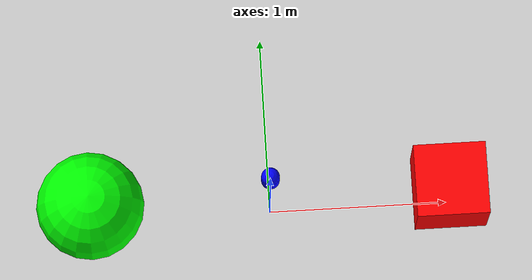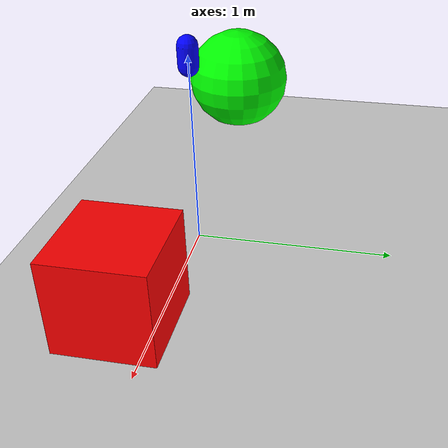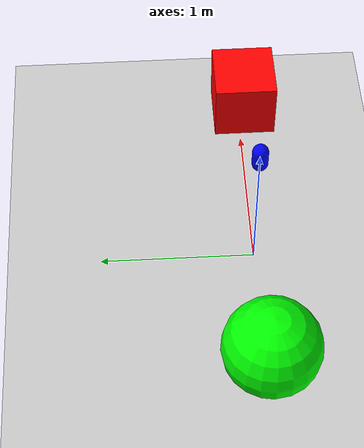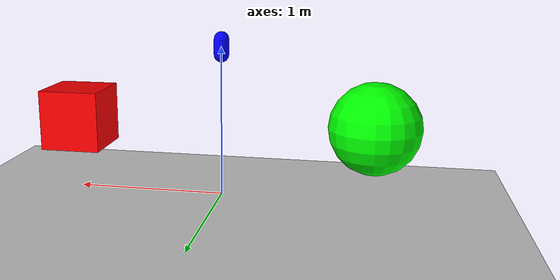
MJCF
<mujoco>
  <worldbody>
    <light pos="0 0 3"/>
    <geom name="floor" type="plane" size="2 2 0.1" rgba=".8 .8 .8 1"/>
    <body name="lidar_base" pos="0 0 1">
        <joint name="lidar_joint" type="free"/>
        <geom type="capsule" size="0.05 0.05" rgba="0 0 1 1"/>
        <site name="lidar_site" size="0.005" rgba="1 0 0 1"/>
    </body>
    <body name="target_box" pos="1 0 0.5">
      <joint type="free"/>
      <geom name="box_geom" type="box" size="0.2 0.2 0.2" rgba="1 0 0 1"/>
    </body>
    <body name="target_sphere" pos="-1 0 0.5">
      <joint type="free"/>
      <geom name="sphere_geom" type="sphere" size="0.3" rgba="0 1 0 1"/>
    </body>
  </worldbody>
  <actuator>
    <position name="lidar_position" joint="lidar_joint" ctrlrange="-0.1 0.1"/>
  </actuator>
</mujoco>
